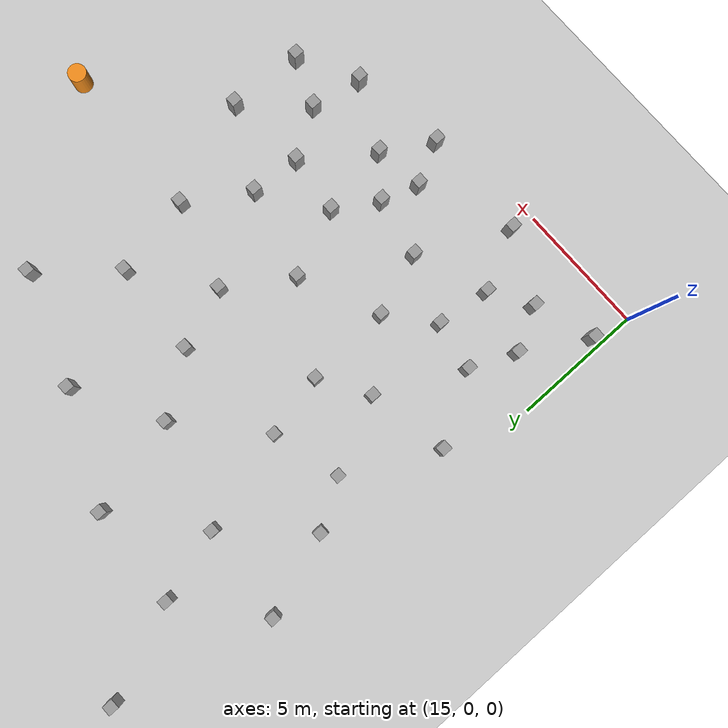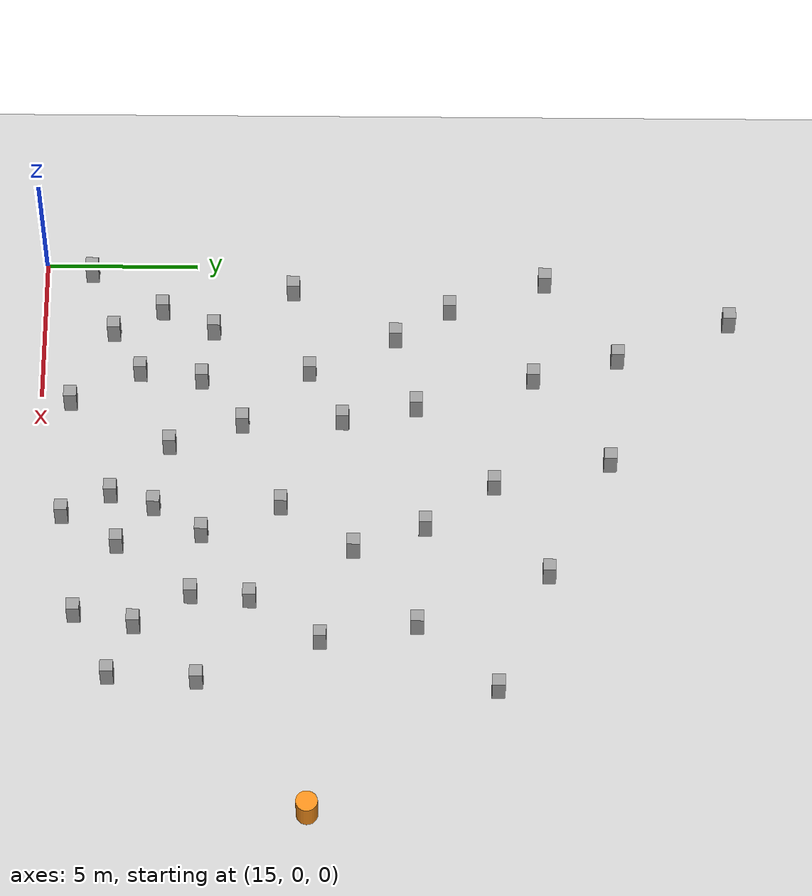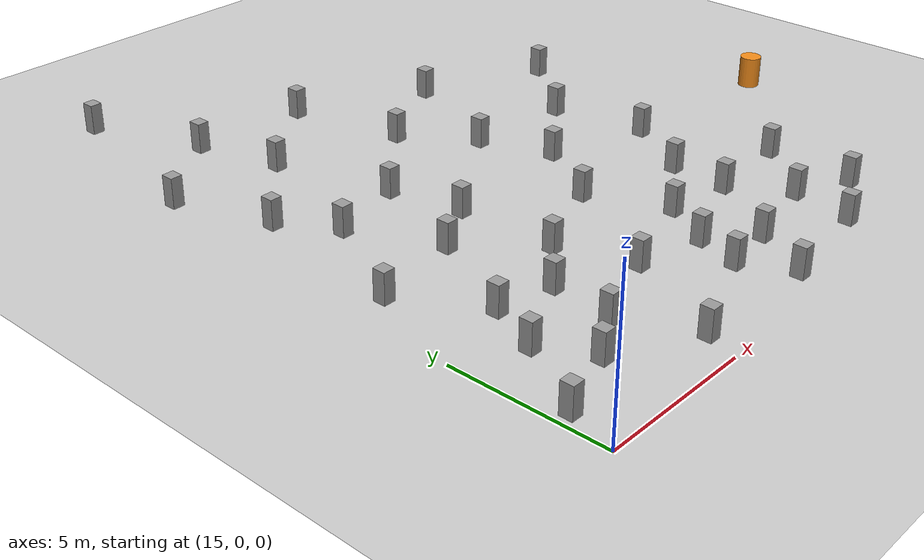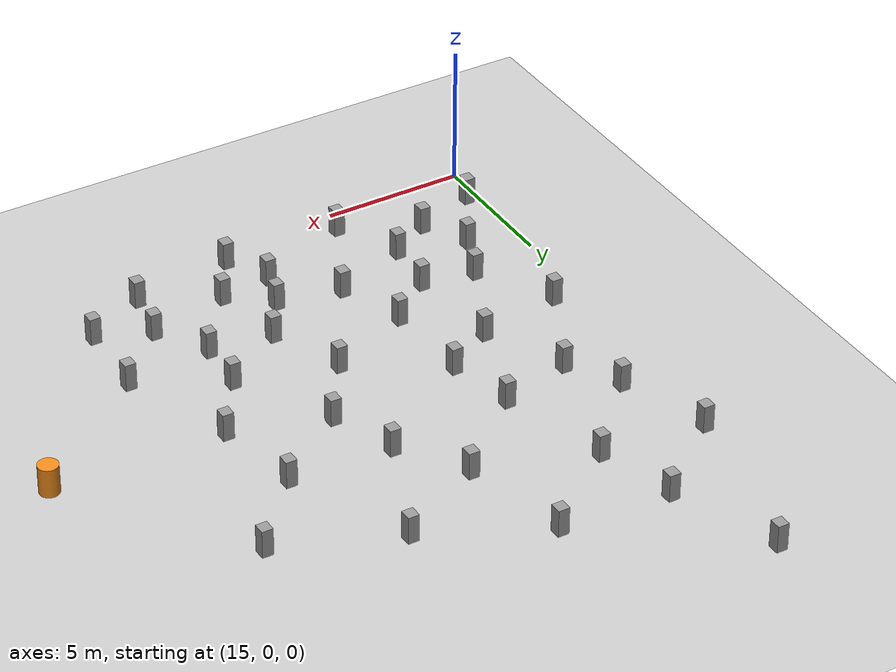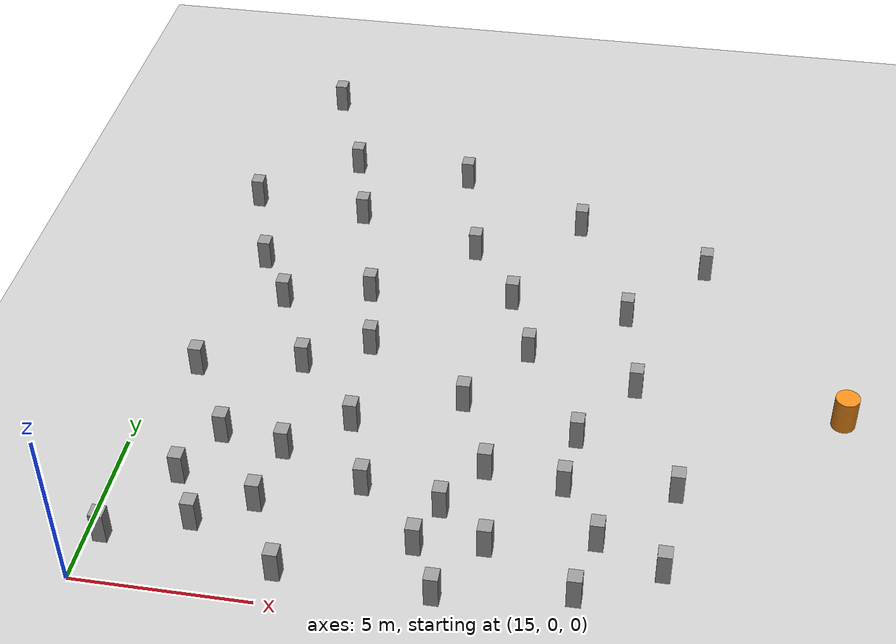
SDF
<sdf version="1.10">
 <world name="obstacle_field">
  <model name="ground_plane">
   <static>true</static>
   <link name="link">
    <collision name="collision">
     <geometry><plane><normal>0 0 1</normal><size>100 100</size></plane></geometry>
     <surface>
      <friction><ode><mu>1000</mu><mu2>1000</mu2><slip1>0</slip1><slip2>0</slip2></ode></friction>
      <bounce><restitution_coefficient>0</restitution_coefficient></bounce>
     </surface>
    </collision>
    <visual name="visual">
     <cast_shadows>false</cast_shadows>
     <geometry><plane><normal>0 0 1</normal><size>100 100</size></plane></geometry>
     <material>
      <script><uri>file://media/materials/scripts/gazebo.material</uri><name>Gazebo/Grey</name></script>
     </material>
    </visual>
    <inertial>
     <mass>1</mass>
     <inertia><ixx>1</ixx><ixy>0</ixy><ixz>0</ixz><iyy>1</iyy><iyz>0</iyz><izz>1</izz></inertia>
    </inertial>
   </link>
  </model>
  <model name="unit_box_0_clone_5_clone_2_clone_1_clone_1">
   <static>true</static>
   <pose>17.68789749996462 2.3268800023325551 0.49999999632621189 -3.4218145334087293e-14 5.7689899603250314e-13 -0.0009339533180120665</pose>
   <link name="link">
    <inertial>
     <mass>1</mass>
     <inertia>
      <ixx>0.16666700000000001</ixx>
      <ixy>0</ixy>
      <ixz>0</ixz>
      <iyy>0.16666700000000001</iyy>
      <iyz>0</iyz>
      <izz>0.16666700000000001</izz>
     </inertia>
    </inertial>
    <collision name="collision">
     <geometry><box><size>0.392878 0.42264299999999999 1</size></box></geometry>
    </collision>
    <visual name="visual">
     <geometry><box><size>0.392878 0.42264299999999999 1</size></box></geometry>
     <material>
      <script><name>Gazebo/Grey</name><uri>file://media/materials/scripts/gazebo.material</uri></script>
     </material>
    </visual>
   </link>
  </model>
  <model name="unit_box_0_clone_5_clone_2_clone_1_clone_2">
   <static>true</static>
   <pose>15.434800148010254 1.5389300584793086 0.49999898672103887 6.4981409769369614e-08 -1.2996301319880549e-07 -0.00091503511145289934</pose>
   <link name="link">
    <inertial>
     <mass>1</mass>
     <inertia>
      <ixx>0.16666700000000001</ixx>
      <ixy>0</ixy>
      <ixz>0</ixz>
      <iyy>0.16666700000000001</iyy>
      <iyz>0</iyz>
      <izz>0.16666700000000001</izz>
     </inertia>
    </inertial>
    <collision name="collision">
     <geometry><box><size>0.392878 0.42264299999999999 1</size></box></geometry>
    </collision>
    <visual name="visual">
     <geometry><box><size>0.392878 0.42264299999999999 1</size></box></geometry>
     <material>
      <script><name>Gazebo/Grey</name><uri>file://media/materials/scripts/gazebo.material</uri></script>
     </material>
    </visual>
   </link>
  </model>
  <model name="unit_box_0_clone_5_clone_2_clone_1_clone_8">
   <static>true</static>
   <pose>23.743499499122006 2.4061790004238555 0.49999999632621162 -5.2722918672139091e-13 5.7505081275288677e-13 -0.00087277813948394734</pose>
   <link name="link">
    <inertial>
     <mass>1</mass>
     <inertia>
      <ixx>0.16666700000000001</ixx>
      <ixy>0</ixy>
      <ixz>0</ixz>
      <iyy>0.16666700000000001</iyy>
      <iyz>0</iyz>
      <izz>0.16666700000000001</izz>
     </inertia>
    </inertial>
    <collision name="collision">
     <geometry><box><size>0.392878 0.42264299999999999 1</size></box></geometry>
    </collision>
    <visual name="visual">
     <geometry><box><size>0.392878 0.42264299999999999 1</size></box></geometry>
     <material>
      <script><name>Gazebo/Grey</name><uri>file://media/materials/scripts/gazebo.material</uri></script>
     </material>
    </visual>
   </link>
  </model>
  <model name="unit_box_0_clone_5_clone_2_clone_1_clone_10">
   <static>true</static>
   <pose>28.11344146728516 1.3615589141845703 0.50000101327896107 1.3707604314139031e-06 1.9236906132299216e-06 -0.00085200628493950091</pose>
   <link name="link">
    <inertial>
     <mass>1</mass>
     <inertia>
      <ixx>0.16666700000000001</ixx>
      <ixy>0</ixy>
      <ixz>0</ixz>
      <iyy>0.16666700000000001</iyy>
      <iyz>0</iyz>
      <izz>0.16666700000000001</izz>
     </inertia>
    </inertial>
    <collision name="collision">
     <geometry><box><size>0.392878 0.42264299999999999 1</size></box></geometry>
    </collision>
    <visual name="visual">
     <geometry><box><size>0.392878 0.42264299999999999 1</size></box></geometry>
     <material>
      <script><name>Gazebo/Grey</name><uri>file://media/materials/scripts/gazebo.material</uri></script>
     </material>
    </visual>
   </link>
  </model>
  <model name="unit_box_0_clone_5_clone_2_clone_1_clone_11">
   <static>true</static>
   <pose>27.395267486572269 5.1025390625 0.49999859929084778 -1.2996203613440209e-07 -6.4981223860486695e-08 -0.00086803028507682455</pose>
   <link name="link">
    <inertial>
     <mass>1</mass>
     <inertia>
      <ixx>0.16666700000000001</ixx>
      <ixy>0</ixy>
      <ixz>0</ixz>
      <iyy>0.16666700000000001</iyy>
      <iyz>0</iyz>
      <izz>0.16666700000000001</izz>
     </inertia>
    </inertial>
    <collision name="collision">
     <geometry><box><size>0.392878 0.42264299999999999 1</size></box></geometry>
    </collision>
    <visual name="visual">
     <geometry><box><size>0.392878 0.42264299999999999 1</size></box></geometry>
     <material>
      <script><name>Gazebo/Grey</name><uri>file://media/materials/scripts/gazebo.material</uri></script>
     </material>
    </visual>
   </link>
  </model>
  <model name="unit_box_0_clone_5_clone_2_clone_1_clone_12_clone_3">
   <static>true</static>
   <pose>16.093000500766571 8.2310509996281596 0.49999999632621162 5.3129883567391085e-13 -5.7385553276015602e-13 -0.00076251908108890742</pose>
   <link name="link">
    <inertial>
     <mass>1</mass>
     <inertia>
      <ixx>0.16666700000000001</ixx>
      <ixy>0</ixy>
      <ixz>0</ixz>
      <iyy>0.16666700000000001</iyy>
      <iyz>0</iyz>
      <izz>0.16666700000000001</izz>
     </inertia>
    </inertial>
    <collision name="collision">
     <geometry><box><size>0.392878 0.42264299999999999 1</size></box></geometry>
    </collision>
    <visual name="visual">
     <geometry><box><size>0.392878 0.42264299999999999 1</size></box></geometry>
     <material>
      <script><name>Gazebo/Grey</name><uri>file://media/materials/scripts/gazebo.material</uri></script>
     </material>
    </visual>
   </link>
  </model>
  <model name="unit_box_0_clone_5_clone_2_clone_1_clone_12_clone_4">
   <static>true</static>
   <pose>17.596601000390343 5.6313704992424389 0.49999999632621162 5.2960790228148601e-13 -5.6825348592483397e-13 -0.00076251908108889994</pose>
   <link name="link">
    <inertial>
     <mass>1</mass>
     <inertia>
      <ixx>0.16666700000000001</ixx>
      <ixy>0</ixy>
      <ixz>0</ixz>
      <iyy>0.16666700000000001</iyy>
      <iyz>0</iyz>
      <izz>0.16666700000000001</izz>
     </inertia>
    </inertial>
    <collision name="collision">
     <geometry><box><size>0.392878 0.42264299999999999 1</size></box></geometry>
    </collision>
    <visual name="visual">
     <geometry><box><size>0.392878 0.42264299999999999 1</size></box></geometry>
     <material>
      <script><name>Gazebo/Grey</name><uri>file://media/materials/scripts/gazebo.material</uri></script>
     </material>
    </visual>
   </link>
  </model>
  <model name="unit_box_0_clone_5_clone_2_clone_1_clone_12_clone_6">
   <static>true</static>
   <pose>19.204698498491823 3.2440980011087093 0.49999999632620984 -5.3000164086314916e-13 5.6991691926334059e-13 -0.00074949294086946387</pose>
   <link name="link">
    <inertial>
     <mass>1</mass>
     <inertia>
      <ixx>0.16666700000000001</ixx>
      <ixy>0</ixy>
      <ixz>0</ixz>
      <iyy>0.16666700000000001</iyy>
      <iyz>0</iyz>
      <izz>0.16666700000000001</izz>
     </inertia>
    </inertial>
    <collision name="collision">
     <geometry><box><size>0.392878 0.42264299999999999 1</size></box></geometry>
    </collision>
    <visual name="visual">
     <geometry><box><size>0.392878 0.42264299999999999 1</size></box></geometry>
     <material>
      <script><name>Gazebo/Grey</name><uri>file://media/materials/scripts/gazebo.material</uri></script>
     </material>
    </visual>
   </link>
  </model>
  <model name="unit_box_0_clone_5_clone_2_clone_1_clone_12_clone_8">
   <static>true</static>
   <pose>20.301699998894581 0.98155649998696426 0.49999999632621167 -5.3413665674490914e-13 -1.0121604404586753e-14 -0.00073746961832188971</pose>
   <link name="link">
    <inertial>
     <mass>1</mass>
     <inertia>
      <ixx>0.16666700000000001</ixx>
      <ixy>0</ixy>
      <ixz>0</ixz>
      <iyy>0.16666700000000001</iyy>
      <iyz>0</iyz>
      <izz>0.16666700000000001</izz>
     </inertia>
    </inertial>
    <collision name="collision">
     <geometry><box><size>0.392878 0.42264299999999999 1</size></box></geometry>
    </collision>
    <visual name="visual">
     <geometry><box><size>0.392878 0.42264299999999999 1</size></box></geometry>
     <material>
      <script><name>Gazebo/Grey</name><uri>file://media/materials/scripts/gazebo.material</uri></script>
     </material>
    </visual>
   </link>
  </model>
  <model name="unit_box_0_clone_5_clone_2_clone_1_clone_12_clone_11">
   <static>true</static>
   <pose>16.844601501443272 3.9174019989380358 0.49999999632620978 5.3106765297474629e-13 -5.7384403362623798e-13 -0.00071743238441720895</pose>
   <link name="link">
    <inertial>
     <mass>1</mass>
     <inertia>
      <ixx>0.16666700000000001</ixx>
      <ixy>0</ixy>
      <ixz>0</ixz>
      <iyy>0.16666700000000001</iyy>
      <iyz>0</iyz>
      <izz>0.16666700000000001</izz>
     </inertia>
    </inertial>
    <collision name="collision">
     <geometry><box><size>0.392878 0.42264299999999999 1</size></box></geometry>
    </collision>
    <visual name="visual">
     <geometry><box><size>0.392878 0.42264299999999999 1</size></box></geometry>
     <material>
      <script><name>Gazebo/Grey</name><uri>file://media/materials/scripts/gazebo.material</uri></script>
     </material>
    </visual>
   </link>
  </model>
  <model name="unit_box_0_clone_5_clone_2_clone_1_clone_12_clone_12">
   <static>true</static>
   <pose>21.111897998929436 6.6463185014009278 0.49999999632621073 -5.3095182785376526e-13 5.7563839436365254e-13 -0.00070541102607077041</pose>
   <link name="link">
    <inertial>
     <mass>1</mass>
     <inertia>
      <ixx>0.16666700000000001</ixx>
      <ixy>0</ixy>
      <ixz>0</ixz>
      <iyy>0.16666700000000001</iyy>
      <iyz>0</iyz>
      <izz>0.16666700000000001</izz>
     </inertia>
    </inertial>
    <collision name="collision">
     <geometry><box><size>0.392878 0.42264299999999999 1</size></box></geometry>
    </collision>
    <visual name="visual">
     <geometry><box><size>0.392878 0.42264299999999999 1</size></box></geometry>
     <material>
      <script><name>Gazebo/Grey</name><uri>file://media/materials/scripts/gazebo.material</uri></script>
     </material>
    </visual>
   </link>
  </model>
  <model name="unit_box_0_clone_5_clone_2_clone_1_clone_12_clone_13">
   <static>true</static>
   <pose>17.8590020010644 11.624401498606925 0.49999999632621073 5.2974228685060681e-13 -5.7163755295701264e-13 -0.00070140406541936023</pose>
   <link name="link">
    <inertial>
     <mass>1</mass>
     <inertia>
      <ixx>0.16666700000000001</ixx>
      <ixy>0</ixy>
      <ixz>0</ixz>
      <iyy>0.16666700000000001</iyy>
      <iyz>0</iyz>
      <izz>0.16666700000000001</izz>
     </inertia>
    </inertial>
    <collision name="collision">
     <geometry><box><size>0.392878 0.42264299999999999 1</size></box></geometry>
    </collision>
    <visual name="visual">
     <geometry><box><size>0.392878 0.42264299999999999 1</size></box></geometry>
     <material>
      <script><name>Gazebo/Grey</name><uri>file://media/materials/scripts/gazebo.material</uri></script>
     </material>
    </visual>
   </link>
  </model>
  <model name="unit_box_0_clone_5_clone_2_clone_1_clone_12_clone_14">
   <static>true</static>
   <pose>20.97199849859927 9.9186180010313247 0.49999999632620978 -5.3445435207542907e-13 5.7528415581681376e-13 -0.00069639547304244532</pose>
   <link name="link">
    <inertial>
     <mass>1</mass>
     <inertia>
      <ixx>0.16666700000000001</ixx>
      <ixy>0</ixy>
      <ixz>0</ixz>
      <iyy>0.16666700000000001</iyy>
      <iyz>0</iyz>
      <izz>0.16666700000000001</izz>
     </inertia>
    </inertial>
    <collision name="collision">
     <geometry><box><size>0.392878 0.42264299999999999 1</size></box></geometry>
    </collision>
    <visual name="visual">
     <geometry><box><size>0.392878 0.42264299999999999 1</size></box></geometry>
     <material>
      <script><name>Gazebo/Grey</name><uri>file://media/materials/scripts/gazebo.material</uri></script>
     </material>
    </visual>
   </link>
  </model>
  <model name="unit_box_0_clone_5_clone_2_clone_1_clone_12_clone_15">
   <static>true</static>
   <pose>24.516759872436527 0.83832907676696777 0.49999910593032831 6.4980405346434361e-08 -1.299610069113075e-07 -0.00069301506716534268</pose>
   <link name="link">
    <inertial>
     <mass>1</mass>
     <inertia>
      <ixx>0.16666700000000001</ixx>
      <ixy>0</ixy>
      <ixz>0</ixz>
      <iyy>0.16666700000000001</iyy>
      <iyz>0</iyz>
      <izz>0.16666700000000001</izz>
     </inertia>
    </inertial>
    <collision name="collision">
     <geometry><box><size>0.392878 0.42264299999999999 1</size></box></geometry>
    </collision>
    <visual name="visual">
     <geometry><box><size>0.392878 0.42264299999999999 1</size></box></geometry>
     <material>
      <script><name>Gazebo/Grey</name><uri>file://media/materials/scripts/gazebo.material</uri></script>
     </material>
    </visual>
   </link>
  </model>
  <model name="unit_box_0_clone_5_clone_2_clone_1_clone_12_clone_13_clone_12">
   <static>true</static>
   <pose>21.941898999817585 4.2797295003602391 0.49999999632621162 -5.2754200609319671e-13 5.7289675931884851e-13 -0.00036105514935499863</pose>
   <link name="link">
    <inertial>
     <mass>1</mass>
     <inertia>
      <ixx>0.16666700000000001</ixx>
      <ixy>0</ixy>
      <ixz>0</ixz>
      <iyy>0.16666700000000001</iyy>
      <iyz>0</iyz>
      <izz>0.16666700000000001</izz>
     </inertia>
    </inertial>
    <collision name="collision">
     <geometry><box><size>0.392878 0.42264299999999999 1</size></box></geometry>
    </collision>
    <visual name="visual">
     <geometry><box><size>0.392878 0.42264299999999999 1</size></box></geometry>
     <material>
      <script><name>Gazebo/Grey</name><uri>file://media/materials/scripts/gazebo.material</uri></script>
     </material>
    </visual>
   </link>
  </model>
  <model name="unit_box_0_clone_5_clone_2_clone_1_clone_12_clone_13_clone_13">
   <static>true</static>
   <pose>19.155798499996962 8.8142700005399384 0.49999999632621167 -1.1781720946362535e-15 5.7470617927487425e-13 -0.00036005469331976001</pose>
   <link name="link">
    <inertial>
     <mass>1</mass>
     <inertia>
      <ixx>0.16666700000000001</ixx>
      <ixy>0</ixy>
      <ixz>0</ixz>
      <iyy>0.16666700000000001</iyy>
      <iyz>0</iyz>
      <izz>0.16666700000000001</izz>
     </inertia>
    </inertial>
    <collision name="collision">
     <geometry><box><size>0.392878 0.42264299999999999 1</size></box></geometry>
    </collision>
    <visual name="visual">
     <geometry><box><size>0.392878 0.42264299999999999 1</size></box></geometry>
     <material>
      <script><name>Gazebo/Grey</name><uri>file://media/materials/scripts/gazebo.material</uri></script>
     </material>
    </visual>
   </link>
  </model>
  <model name="unit_box_0_clone_5_clone_2_clone_1_clone_12_clone_13_clone_17">
   <static>true</static>
   <pose>25.602605819702148 2.6572849750518794 0.4999992847442627 1.9493800607933471e-07 9.7064740248133809e-16 -0.00034500200040406053</pose>
   <link name="link">
    <inertial>
     <mass>1</mass>
     <inertia>
      <ixx>0.16666700000000001</ixx>
      <ixy>0</ixy>
      <ixz>0</ixz>
      <iyy>0.16666700000000001</iyy>
      <iyz>0</iyz>
      <izz>0.16666700000000001</izz>
     </inertia>
    </inertial>
    <collision name="collision">
     <geometry><box><size>0.392878 0.42264299999999999 1</size></box></geometry>
    </collision>
    <visual name="visual">
     <geometry><box><size>0.392878 0.42264299999999999 1</size></box></geometry>
     <material>
      <script><name>Gazebo/Grey</name><uri>file://media/materials/scripts/gazebo.material</uri></script>
     </material>
    </visual>
   </link>
  </model>
  <model name="unit_box_0_clone_5_clone_2_clone_1_clone_12_clone_13_clone_18">
   <static>true</static>
   <pose>25.17330150067999 5.3947719994942904 0.49999999632620978 5.3328543181248214e-13 -5.687266942883667e-13 -0.00033904566051608617</pose>
   <link name="link">
    <inertial>
     <mass>1</mass>
     <inertia>
      <ixx>0.16666700000000001</ixx>
      <ixy>0</ixy>
      <ixz>0</ixz>
      <iyy>0.16666700000000001</iyy>
      <iyz>0</iyz>
      <izz>0.16666700000000001</izz>
     </inertia>
    </inertial>
    <collision name="collision">
     <geometry><box><size>0.392878 0.42264299999999999 1</size></box></geometry>
    </collision>
    <visual name="visual">
     <geometry><box><size>0.392878 0.42264299999999999 1</size></box></geometry>
     <material>
      <script><name>Gazebo/Grey</name><uri>file://media/materials/scripts/gazebo.material</uri></script>
     </material>
    </visual>
   </link>
  </model>
  <model name="unit_box_0_clone_5_clone_2_clone_1_clone_12_clone_13_clone_19">
   <static>true</static>
   <pose>24.137501000169689 7.9503304996646182 0.49999999632621162 5.3533605160379149e-13 -5.7662237011839238e-13 -0.0003360444653133616</pose>
   <link name="link">
    <inertial>
     <mass>1</mass>
     <inertia>
      <ixx>0.16666700000000001</ixx>
      <ixy>0</ixy>
      <ixz>0</ixz>
      <iyy>0.16666700000000001</iyy>
      <iyz>0</iyz>
      <izz>0.16666700000000001</izz>
     </inertia>
    </inertial>
    <collision name="collision">
     <geometry><box><size>0.392878 0.42264299999999999 1</size></box></geometry>
    </collision>
    <visual name="visual">
     <geometry><box><size>0.392878 0.42264299999999999 1</size></box></geometry>
     <material>
      <script><name>Gazebo/Grey</name><uri>file://media/materials/scripts/gazebo.material</uri></script>
     </material>
    </visual>
   </link>
  </model>
  <model name="unit_box_0_clone_5_clone_2_clone_1_clone_12_clone_13_clone_24">
   <static>true</static>
   <pose>28.486572265624996 3.2960343360900879 0.49999880790710455 -6.4979301199404019e-08 1.2995799735655253e-07 -0.00031900101376060688</pose>
   <link name="link">
    <inertial>
     <mass>1</mass>
     <inertia>
      <ixx>0.16666700000000001</ixx>
      <ixy>0</ixy>
      <ixz>0</ixz>
      <iyy>0.16666700000000001</iyy>
      <iyz>0</iyz>
      <izz>0.16666700000000001</izz>
     </inertia>
    </inertial>
    <collision name="collision">
     <geometry><box><size>0.392878 0.42264299999999999 1</size></box></geometry>
    </collision>
    <visual name="visual">
     <geometry><box><size>0.392878 0.42264299999999999 1</size></box></geometry>
     <material>
      <script><name>Gazebo/Grey</name><uri>file://media/materials/scripts/gazebo.material</uri></script>
     </material>
    </visual>
   </link>
  </model>
  <model name="unit_box_0_clone_5_clone_2_clone_1_clone_12_clone_13_clone_25">
   <static>true</static>
   <pose>24.198099499680293 3.8189190001581155 0.49999999632621162 -5.3332067130504608e-13 5.7508168977881259e-13 -0.00031903805093496691</pose>
   <link name="link">
    <inertial>
     <mass>1</mass>
     <inertia>
      <ixx>0.16666700000000001</ixx>
      <ixy>0</ixy>
      <ixz>0</ixz>
      <iyy>0.16666700000000001</iyy>
      <iyz>0</iyz>
      <izz>0.16666700000000001</izz>
     </inertia>
    </inertial>
    <collision name="collision">
     <geometry><box><size>0.392878 0.42264299999999999 1</size></box></geometry>
    </collision>
    <visual name="visual">
     <geometry><box><size>0.392878 0.42264299999999999 1</size></box></geometry>
     <material>
      <script><name>Gazebo/Grey</name><uri>file://media/materials/scripts/gazebo.material</uri></script>
     </material>
    </visual>
   </link>
  </model>
  <model name="unit_box_0_clone_5_clone_2_clone_1_clone_12_clone_13_clone_26">
   <static>true</static>
   <pose>19.466201000159987 5.2782804996835164 0.49999999632621162 5.308077453751038e-13 -5.7565972907663024e-13 -0.0003170373396178512</pose>
   <link name="link">
    <inertial>
     <mass>1</mass>
     <inertia>
      <ixx>0.16666700000000001</ixx>
      <ixy>0</ixy>
      <ixz>0</ixz>
      <iyy>0.16666700000000001</iyy>
      <iyz>0</iyz>
      <izz>0.16666700000000001</izz>
     </inertia>
    </inertial>
    <collision name="collision">
     <geometry><box><size>0.392878 0.42264299999999999 1</size></box></geometry>
    </collision>
    <visual name="visual">
     <geometry><box><size>0.392878 0.42264299999999999 1</size></box></geometry>
     <material>
      <script><name>Gazebo/Grey</name><uri>file://media/materials/scripts/gazebo.material</uri></script>
     </material>
    </visual>
   </link>
  </model>
  <model name="unit_box_0_clone_5_clone_2_clone_1_clone_12_clone_13_clone_9">
   <static>true</static>
   <pose>20.451200499929865 12.323998999965266 0.49999999632621162 -5.3216368188858316e-13 -5.7712250418688766e-13 -7.0000403069142022e-05</pose>
   <link name="link">
    <inertial>
     <mass>1</mass>
     <inertia>
      <ixx>0.16666700000000001</ixx>
      <ixy>0</ixy>
      <ixz>0</ixz>
      <iyy>0.16666700000000001</iyy>
      <iyz>0</iyz>
      <izz>0.16666700000000001</izz>
     </inertia>
    </inertial>
    <collision name="collision">
     <geometry><box><size>0.392878 0.42264299999999999 1</size></box></geometry>
    </collision>
    <visual name="visual">
     <geometry><box><size>0.392878 0.42264299999999999 1</size></box></geometry>
     <material>
      <script><name>Gazebo/Grey</name><uri>file://media/materials/scripts/gazebo.material</uri></script>
     </material>
    </visual>
   </link>
  </model>
  <model name="unit_box_0_clone_5_clone_2_clone_1_clone_12_clone_13_clone_10">
   <static>true</static>
   <pose>16.787902999996369 13.412299999789939 0.499999996326211 -2.702956694161779e-18 5.6831954647198592e-13 -7.0000401997517909e-05</pose>
   <link name="link">
    <inertial>
     <mass>1</mass>
     <inertia>
      <ixx>0.16666700000000001</ixx>
      <ixy>0</ixy>
      <ixz>0</ixz>
      <iyy>0.16666700000000001</iyy>
      <iyz>0</iyz>
      <izz>0.16666700000000001</izz>
     </inertia>
    </inertial>
    <collision name="collision">
     <geometry><box><size>0.392878 0.42264299999999999 1</size></box></geometry>
    </collision>
    <visual name="visual">
     <geometry><box><size>0.392878 0.42264299999999999 1</size></box></geometry>
     <material>
      <script><name>Gazebo/Grey</name><uri>file://media/materials/scripts/gazebo.material</uri></script>
     </material>
    </visual>
   </link>
  </model>
  <model name="unit_box_0_clone_5_clone_2_clone_1_clone_12_clone_13_clone_29">
   <static>true</static>
   <pose>25.701700999835868 10.326897999918151 0.49999999632620995 -5.3170350417010156e-13 -5.7144039716231043e-13 -8.2000652602107609e-05</pose>
   <link name="link">
    <inertial>
     <mass>1</mass>
     <inertia>
      <ixx>0.16666700000000001</ixx>
      <ixy>0</ixy>
      <ixz>0</ixz>
      <iyy>0.16666700000000001</iyy>
      <iyz>0</iyz>
      <izz>0.16666700000000001</izz>
     </inertia>
    </inertial>
    <collision name="collision">
     <geometry><box><size>0.392878 0.42264299999999999 1</size></box></geometry>
    </collision>
    <visual name="visual">
     <geometry><box><size>0.392878 0.42264299999999999 1</size></box></geometry>
     <material>
      <script><name>Gazebo/Grey</name><uri>file://media/materials/scripts/gazebo.material</uri></script>
     </material>
    </visual>
   </link>
  </model>
  <model name="unit_box_0_clone_5_clone_2_clone_1_clone_12_clone_13_clone_30">
   <static>true</static>
   <pose>27.533199500086113 7.0045710000428363 0.49999999632621162 5.3011421924366957e-13 5.7283712922361558e-13 -8.6000746537699284e-05</pose>
   <link name="link">
    <inertial>
     <mass>1</mass>
     <inertia>
      <ixx>0.16666700000000001</ixx>
      <ixy>0</ixy>
      <ixz>0</ixz>
      <iyy>0.16666700000000001</iyy>
      <iyz>0</iyz>
      <izz>0.16666700000000001</izz>
     </inertia>
    </inertial>
    <collision name="collision">
     <geometry><box><size>0.392878 0.42264299999999999 1</size></box></geometry>
    </collision>
    <visual name="visual">
     <geometry><box><size>0.392878 0.42264299999999999 1</size></box></geometry>
     <material>
      <script><name>Gazebo/Grey</name><uri>file://media/materials/scripts/gazebo.material</uri></script>
     </material>
    </visual>
   </link>
  </model>
  <model name="unit_box_0_clone_5_clone_2_clone_1_clone_12_clone_13_clone_56">
   <static>true</static>
   <pose>15.722699999834063 16.568598999999558 0.49999999632620978 -5.3098935502498285e-13 -7.326530963135736e-17 -0.00016600536134032414</pose>
   <link name="link">
    <inertial>
     <mass>1</mass>
     <inertia>
      <ixx>0.16666700000000001</ixx>
      <ixy>0</ixy>
      <ixz>0</ixz>
      <iyy>0.16666700000000001</iyy>
      <iyz>0</iyz>
      <izz>0.16666700000000001</izz>
     </inertia>
    </inertial>
    <collision name="collision">
     <geometry><box><size>0.392878 0.42264299999999999 1</size></box></geometry>
    </collision>
    <visual name="visual">
     <geometry><box><size>0.392878 0.42264299999999999 1</size></box></geometry>
     <material>
      <script><name>Gazebo/Grey</name><uri>file://media/materials/scripts/gazebo.material</uri></script>
     </material>
    </visual>
   </link>
  </model>
  <model name="unit_box_0_clone_5_clone_2_clone_1_clone_12_clone_13_clone_57">
   <static>true</static>
   <pose>19.378299000422441 16.177202500169997 0.49999999632621134 5.3756674407080263e-13 5.7771220855356647e-13 -0.00016900566684949854</pose>
   <link name="link">
    <inertial>
     <mass>1</mass>
     <inertia>
      <ixx>0.16666700000000001</ixx>
      <ixy>0</ixy>
      <ixz>0</ixz>
      <iyy>0.16666700000000001</iyy>
      <iyz>0</iyz>
      <izz>0.16666700000000001</izz>
     </inertia>
    </inertial>
    <collision name="collision">
     <geometry><box><size>0.392878 0.42264299999999999 1</size></box></geometry>
    </collision>
    <visual name="visual">
     <geometry><box><size>0.392878 0.42264299999999999 1</size></box></geometry>
     <material>
      <script><name>Gazebo/Grey</name><uri>file://media/materials/scripts/gazebo.material</uri></script>
     </material>
    </visual>
   </link>
  </model>
  <model name="unit_box_0_clone_5_clone_2_clone_1_clone_12_clone_13_clone_58">
   <static>true</static>
   <pose>23.35759850033962 14.886802000255445 0.49999999632620978 5.3337010350546455e-13 5.7558230589662119e-13 -0.00017000576615213648</pose>
   <link name="link">
    <inertial>
     <mass>1</mass>
     <inertia>
      <ixx>0.16666700000000001</ixx>
      <ixy>0</ixy>
      <ixz>0</ixz>
      <iyy>0.16666700000000001</iyy>
      <iyz>0</iyz>
      <izz>0.16666700000000001</izz>
     </inertia>
    </inertial>
    <collision name="collision">
     <geometry><box><size>0.392878 0.42264299999999999 1</size></box></geometry>
    </collision>
    <visual name="visual">
     <geometry><box><size>0.392878 0.42264299999999999 1</size></box></geometry>
     <material>
      <script><name>Gazebo/Grey</name><uri>file://media/materials/scripts/gazebo.material</uri></script>
     </material>
    </visual>
   </link>
  </model>
  <model name="unit_box_0_clone_5_clone_2_clone_1_clone_12_clone_13_clone_59">
   <static>true</static>
   <pose>24.877401999827708 12.650298999653947 0.49999999632621156 -5.2929506702497558e-13 -5.7272423206430966e-13 -0.00017300607091501503</pose>
   <link name="link">
    <inertial>
     <mass>1</mass>
     <inertia>
      <ixx>0.16666700000000001</ixx>
      <ixy>0</ixy>
      <ixz>0</ixz>
      <iyy>0.16666700000000001</iyy>
      <iyz>0</iyz>
      <izz>0.16666700000000001</izz>
     </inertia>
    </inertial>
    <collision name="collision">
     <geometry><box><size>0.392878 0.42264299999999999 1</size></box></geometry>
    </collision>
    <visual name="visual">
     <geometry><box><size>0.392878 0.42264299999999999 1</size></box></geometry>
     <material>
      <script><name>Gazebo/Grey</name><uri>file://media/materials/scripts/gazebo.material</uri></script>
     </material>
    </visual>
   </link>
  </model>
  <model name="unit_box_0_clone_5_clone_2_clone_1_clone_12_clone_13_clone_60">
   <static>true</static>
   <pose>28.449898000260376 12.408101500348222 0.49999999632621067 5.3228005272988268e-13 5.6754644030633796e-13 -0.00017400617954015877</pose>
   <link name="link">
    <inertial>
     <mass>1</mass>
     <inertia>
      <ixx>0.16666700000000001</ixx>
      <ixy>0</ixy>
      <ixz>0</ixz>
      <iyy>0.16666700000000001</iyy>
      <iyz>0</iyz>
      <izz>0.16666700000000001</izz>
     </inertia>
    </inertial>
    <collision name="collision">
     <geometry><box><size>0.392878 0.42264299999999999 1</size></box></geometry>
    </collision>
    <visual name="visual">
     <geometry><box><size>0.392878 0.42264299999999999 1</size></box></geometry>
     <material>
      <script><name>Gazebo/Grey</name><uri>file://media/materials/scripts/gazebo.material</uri></script>
     </material>
    </visual>
   </link>
  </model>
  <model name="unit_box_0_clone_5_clone_2_clone_1_clone_12_clone_13_clone_61">
   <static>true</static>
   <pose>29.000201499734956 9.2927684997341924 0.49999999632621051 -5.3609588202944835e-13 -5.72833140589792e-13 -0.00017700650420906884</pose>
   <link name="link">
    <inertial>
     <mass>1</mass>
     <inertia>
      <ixx>0.16666700000000001</ixx>
      <ixy>0</ixy>
      <ixz>0</ixz>
      <iyy>0.16666700000000001</iyy>
      <iyz>0</iyz>
      <izz>0.16666700000000001</izz>
     </inertia>
    </inertial>
    <collision name="collision">
     <geometry><box><size>0.392878 0.42264299999999999 1</size></box></geometry>
    </collision>
    <visual name="visual">
     <geometry><box><size>0.392878 0.42264299999999999 1</size></box></geometry>
     <material>
      <script><name>Gazebo/Grey</name><uri>file://media/materials/scripts/gazebo.material</uri></script>
     </material>
    </visual>
   </link>
  </model>
  <model name="unit_box_0_clone_5_clone_2_clone_1_clone_12_clone_13_clone_62">
   <static>true</static>
   <pose>30.462298000269328 5.3718115003603026 0.49999999632621067 5.3531984195373953e-13 5.7504180934015681e-13 -0.0001800068405817554</pose>
   <link name="link">
    <inertial>
     <mass>1</mass>
     <inertia>
      <ixx>0.16666700000000001</ixx>
      <ixy>0</ixy>
      <ixz>0</ixz>
      <iyy>0.16666700000000001</iyy>
      <iyz>0</iyz>
      <izz>0.16666700000000001</izz>
     </inertia>
    </inertial>
    <collision name="collision">
     <geometry><box><size>0.392878 0.42264299999999999 1</size></box></geometry>
    </collision>
    <visual name="visual">
     <geometry><box><size>0.392878 0.42264299999999999 1</size></box></geometry>
     <material>
      <script><name>Gazebo/Grey</name><uri>file://media/materials/scripts/gazebo.material</uri></script>
     </material>
    </visual>
   </link>
  </model>
  <model name="unit_box_0_clone_5_clone_2_clone_1_clone_12_clone_13_clone_63">
   <static>true</static>
   <pose>30.310900999905407 2.5136994998099889 0.49999999632621162 -5.3295508637438205e-13 -5.726514891448704e-13 -0.00019000804033306339</pose>
   <link name="link">
    <inertial>
     <mass>1</mass>
     <inertia>
      <ixx>0.16666700000000001</ixx>
      <ixy>0</ixy>
      <ixz>0</ixz>
      <iyy>0.16666700000000001</iyy>
      <iyz>0</iyz>
      <izz>0.16666700000000001</izz>
     </inertia>
    </inertial>
    <collision name="collision">
     <geometry><box><size>0.392878 0.42264299999999999 1</size></box></geometry>
    </collision>
    <visual name="visual">
     <geometry><box><size>0.392878 0.42264299999999999 1</size></box></geometry>
     <material>
      <script><name>Gazebo/Grey</name><uri>file://media/materials/scripts/gazebo.material</uri></script>
     </material>
    </visual>
   </link>
  </model>
  <model name="unit_box_0_clone_5_clone_2_clone_1_clone_12_clone_13_clone_75">
   <static>true</static>
   <pose>18.616700499737416 18.951498999867368 0.49999999632621162 -5.3309370962890499e-13 -5.7129098342991075e-13 -0.00026302132404647569</pose>
   <link name="link">
    <inertial>
     <mass>1</mass>
     <inertia>
      <ixx>0.16666700000000001</ixx>
      <ixy>0</ixy>
      <ixz>0</ixz>
      <iyy>0.16666700000000001</iyy>
      <iyz>0</iyz>
      <izz>0.16666700000000001</izz>
     </inertia>
    </inertial>
    <collision name="collision">
     <geometry><box><size>0.392878 0.42264299999999999 1</size></box></geometry>
    </collision>
    <visual name="visual">
     <geometry><box><size>0.392878 0.42264299999999999 1</size></box></geometry>
     <material>
      <script><name>Gazebo/Grey</name><uri>file://media/materials/scripts/gazebo.material</uri></script>
     </material>
    </visual>
   </link>
  </model>
  <model name="unit_box_0_clone_5_clone_2_clone_1_clone_12_clone_13_clone_76">
   <static>true</static>
   <pose>22.482201499475082 18.671897999603615 0.49999999632620978 -5.3662549885287551e-13 -5.7329176859077004e-13 -0.00026302133080833586</pose>
   <link name="link">
    <inertial>
     <mass>1</mass>
     <inertia>
      <ixx>0.16666700000000001</ixx>
      <ixy>0</ixy>
      <ixz>0</ixz>
      <iyy>0.16666700000000001</iyy>
      <iyz>0</iyz>
      <izz>0.16666700000000001</izz>
     </inertia>
    </inertial>
    <collision name="collision">
     <geometry><box><size>0.392878 0.42264299999999999 1</size></box></geometry>
    </collision>
    <visual name="visual">
     <geometry><box><size>0.392878 0.42264299999999999 1</size></box></geometry>
     <material>
      <script><name>Gazebo/Grey</name><uri>file://media/materials/scripts/gazebo.material</uri></script>
     </material>
    </visual>
   </link>
  </model>
  <model name="unit_box_0_clone_5_clone_2_clone_1_clone_12_clone_13_clone_77">
   <static>true</static>
   <pose>17.192700999869039 22.650399499735457 0.49999999632621162 -5.2805312316276566e-13 -5.6950836709779662e-13 -0.00026402156822026438</pose>
   <link name="link">
    <inertial>
     <mass>1</mass>
     <inertia>
      <ixx>0.16666700000000001</ixx>
      <ixy>0</ixy>
      <ixz>0</ixz>
      <iyy>0.16666700000000001</iyy>
      <iyz>0</iyz>
      <izz>0.16666700000000001</izz>
     </inertia>
    </inertial>
    <collision name="collision">
     <geometry><box><size>0.392878 0.42264299999999999 1</size></box></geometry>
    </collision>
    <visual name="visual">
     <geometry><box><size>0.392878 0.42264299999999999 1</size></box></geometry>
     <material>
      <script><name>Gazebo/Grey</name><uri>file://media/materials/scripts/gazebo.material</uri></script>
     </material>
    </visual>
   </link>
  </model>
  <model name="unit_box_0_clone_5_clone_2_clone_1_clone_12_clone_13_clone_80">
   <static>true</static>
   <pose>26.582501999565618 16.661598499416389 0.49999999632621067 -5.3723561853274375e-13 -5.6843799418547929e-13 -0.00029102889003198234</pose>
   <link name="link">
    <inertial>
     <mass>1</mass>
     <inertia>
      <ixx>0.16666700000000001</ixx>
      <ixy>0</ixy>
      <ixz>0</ixz>
      <iyy>0.16666700000000001</iyy>
      <iyz>0</iyz>
      <izz>0.16666700000000001</izz>
     </inertia>
    </inertial>
    <collision name="collision">
     <geometry><box><size>0.392878 0.42264299999999999 1</size></box></geometry>
    </collision>
    <visual name="visual">
     <geometry><box><size>0.392878 0.42264299999999999 1</size></box></geometry>
     <material>
      <script><name>Gazebo/Grey</name><uri>file://media/materials/scripts/gazebo.material</uri></script>
     </material>
    </visual>
   </link>
  </model>
  <model name="unit_box_0_clone_5_clone_2_clone_1_clone_12_clone_13_clone_81">
   <static>true</static>
   <pose>30.712201499415428 15.017197999558535 0.49999999632620978 -5.3323513547368223e-13 -5.781269250271635e-13 -0.00029302949249833626</pose>
   <link name="link">
    <inertial>
     <mass>1</mass>
     <inertia>
      <ixx>0.16666700000000001</ixx>
      <ixy>0</ixy>
      <ixz>0</ixz>
      <iyy>0.16666700000000001</iyy>
      <iyz>0</iyz>
      <izz>0.16666700000000001</izz>
     </inertia>
    </inertial>
    <collision name="collision">
     <geometry><box><size>0.392878 0.42264299999999999 1</size></box></geometry>
    </collision>
    <visual name="visual">
     <geometry><box><size>0.392878 0.42264299999999999 1</size></box></geometry>
     <material>
      <script><name>Gazebo/Grey</name><uri>file://media/materials/scripts/gazebo.material</uri></script>
     </material>
    </visual>
   </link>
  </model>
  <model name="goal_marker">
   <static>true</static>
   <link name="link_0">
    <inertial>
     <mass>100</mass>
     <inertia>
      <ixx>0.37079600000000001</ixx>
      <ixy>0</ixy>
      <ixz>0</ixz>
      <iyy>0.37079600000000001</iyy>
      <iyz>0</iyz>
      <izz>0.0617961</izz>
     </inertia>
    </inertial>
    <visual name="visual">
     <geometry>
      <cylinder><radius>0.35165200000000002</radius><length>2.0202399999999998</length></cylinder>
     </geometry>
     <material>
      <lighting>true</lighting>
      <script><uri>file://media/materials/scripts/gazebo.material</uri><name>Gazebo/Orange</name></script>
      <ambient>1 0.600000024 0 1</ambient>
      <diffuse>1 0.600000024 0 1</diffuse>
      <specular>1 0.610000014 0 1</specular>
      <emissive>0 0 0 1</emissive>
      <shader type="vertex"><normal_map>__default__</normal_map></shader>
     </material>
     <cast_shadows>false</cast_shadows>
    </visual>
    <collision name="collision">
     <geometry>
      <cylinder><radius>0.35165200000000002</radius><length>2.0202399999999998</length></cylinder>
     </geometry>
     <surface>
      <friction>
       <ode><mu>1</mu><mu2>1</mu2><fdir1>0 0 0</fdir1><slip1>0</slip1><slip2>0</slip2></ode>
       <torsional>
        <coefficient>1</coefficient>
        <patch_radius>0</patch_radius>
        <surface_radius>0</surface_radius>
        <use_patch_radius>true</use_patch_radius>
        <ode><slip>0</slip></ode>
       </torsional>
      </friction>
      <bounce><restitution_coefficient>0</restitution_coefficient><threshold>1000000</threshold></bounce>
      <contact>
       <collide_without_contact>false</collide_without_contact>
       <collide_without_contact_bitmask>1</collide_without_contact_bitmask>
       <collide_bitmask>1</collide_bitmask>
       <ode>
        <soft_cfm>0</soft_cfm>
        <soft_erp>0.20000000000000001</soft_erp>
        <kp>10000000000000</kp>
        <kd>1</kd>
        <max_vel>0.01</max_vel>
        <min_depth>0</min_depth>
       </ode>
      </contact>
     </surface>
    </collision>
   </link>
   <pose>35.002200000000002 8.9732699999999994 0.007027548598818067 2.9580155120157519e-17 -1.6117148084847862e-16 2.2768431254631785e-19</pose>
   <plugin filename="gz-sim-pose-publisher-system" name="gz::sim::systems::PosePublisher">
    <publish_model_pose>true</publish_model_pose>
    <use_pose_vector_msg>true</use_pose_vector_msg>
   </plugin>
  </model>
 </world>
</sdf>
